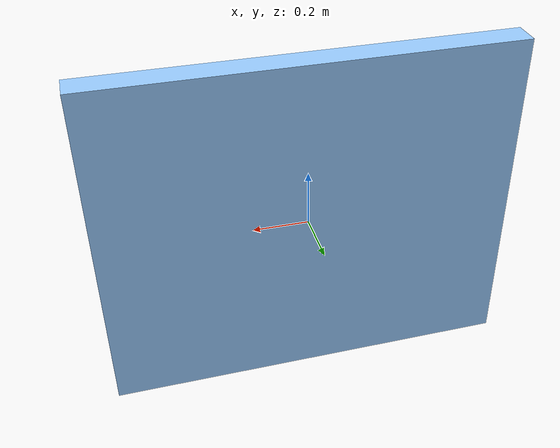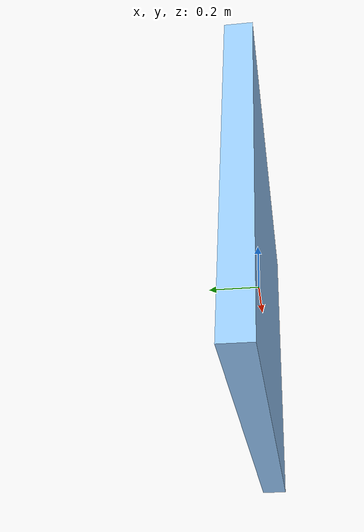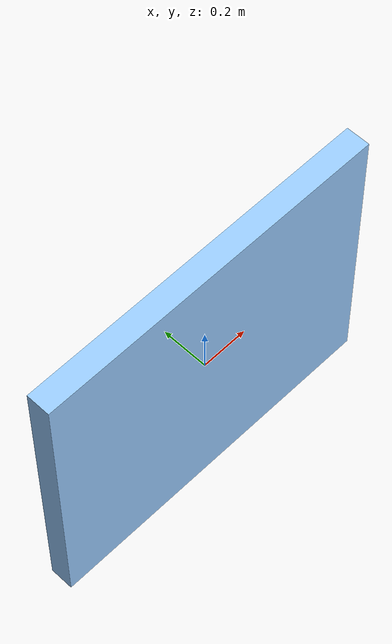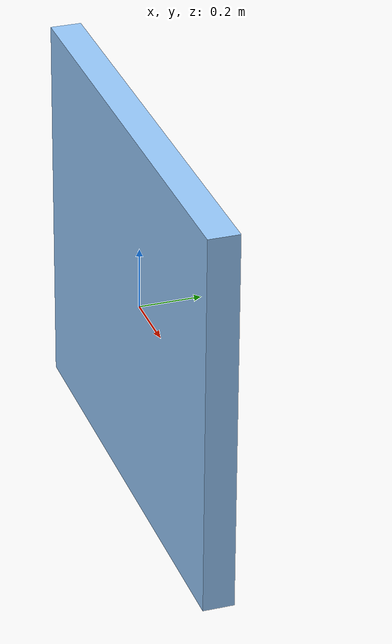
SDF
<?xml version="1.0" ?>
<sdf version="1.6">
  <model name="corridor_wall_bottom_north">
    <static>true</static>
    <link name="link">
      <pose>0 0 0 0 0 0</pose>
      <visual name="visual">
        <geometry>
          <box>
            <size>1.5 0.1 1.25</size>
          </box>
        </geometry>
        <material>
          <ambient>0.5 0.7 0.9 1</ambient>
          <diffuse>0.6 0.8 1.0 1</diffuse>
          <specular>0.15 0.15 0.2 1</specular>
        </material>
      </visual>
      <collision name="collision">
        <geometry>
          <box>
            <size>1.5 0.1 1.25</size>
          </box>
        </geometry>
      </collision>
    </link>
  </model>
</sdf>
